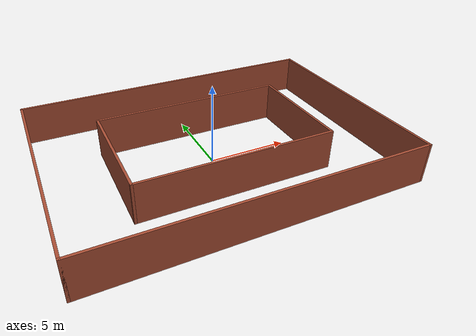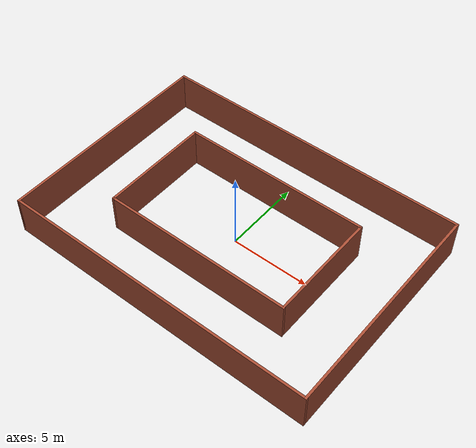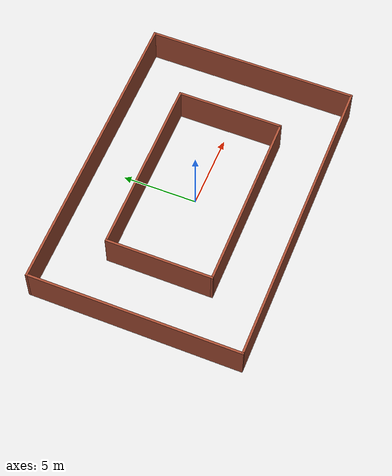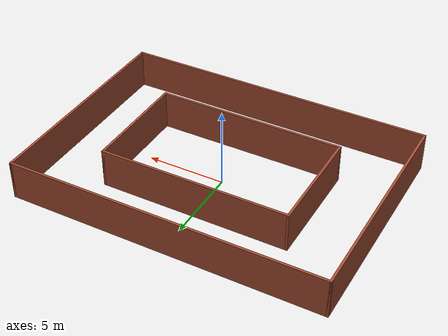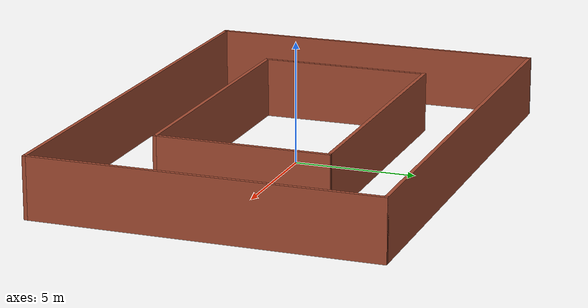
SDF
<?xml version='1.0'?>
<sdf version='1.6'>
  <model name='small_building'>
    <pose frame=''>0 0 0 0 -0 0</pose>
    <link name='Wall_0'>
      <collision name='Wall_0_Collision'>
        <geometry>
          <box>
            <size>14.15 0.15 2.5</size>
          </box>
        </geometry>
        <pose frame=''>0 0 1.25 0 -0 0</pose>
      </collision>
      <visual name='Wall_0_Visual'>
        <pose frame=''>0 0 1.25 0 -0 0</pose>
        <geometry>
          <box>
            <size>14.15 0.15 2.5</size>
          </box>
        </geometry>
        <material>
          <script>
            <uri>file://media/materials/scripts/gazebo.material</uri>
            <name>Gazebo/Bricks</name>
          </script>
          <ambient>1 1 1 1</ambient>
        </material>
        <meta>
          <layer>0</layer>
        </meta>
      </visual>
      <pose frame=''>-10 0 0 0 0 -1.5708</pose>
    </link>
    <link name='Wall_10'>
      <collision name='Wall_10_Collision'>
        <geometry>
          <box>
            <size>7.15 0.15 2.5</size>
          </box>
        </geometry>
        <pose frame=''>0 0 1.25 0 -0 0</pose>
      </collision>
      <visual name='Wall_10_Visual'>
        <pose frame=''>0 0 1.25 0 -0 0</pose>
        <geometry>
          <box>
            <size>7.15 0.15 2.5</size>
          </box>
        </geometry>
        <material>
          <script>
            <uri>file://media/materials/scripts/gazebo.material</uri>
            <name>Gazebo/Bricks</name>
          </script>
          <ambient>1 1 1 1</ambient>
        </material>
        <meta>
          <layer>0</layer>
        </meta>
      </visual>
      <pose frame=''>6 0 0 0 0 -1.5708</pose>
    </link>
    <link name='Wall_11'>
      <collision name='Wall_11_Collision'>
        <geometry>
          <box>
            <size>12.15 0.15 2.5</size>
          </box>
        </geometry>
        <pose frame=''>0 0 1.25 0 -0 0</pose>
      </collision>
      <visual name='Wall_11_Visual'>
        <pose frame=''>0 0 1.25 0 -0 0</pose>
        <geometry>
          <box>
            <size>12.15 0.15 2.5</size>
          </box>
        </geometry>
        <material>
          <script>
            <uri>file://media/materials/scripts/gazebo.material</uri>
            <name>Gazebo/Bricks</name>
          </script>
          <ambient>1 1 1 1</ambient>
        </material>
        <meta>
          <layer>0</layer>
        </meta>
      </visual>
      <pose frame=''>0 -3.5 0 0 -0 3.14159</pose>
    </link>
    <link name='Wall_12'>
      <collision name='Wall_12_Collision'>
        <geometry>
          <box>
            <size>7.15 0.15 2.5</size>
          </box>
        </geometry>
        <pose frame=''>0 0 1.25 0 -0 0</pose>
      </collision>
      <visual name='Wall_12_Visual'>
        <pose frame=''>0 0 1.25 0 -0 0</pose>
        <geometry>
          <box>
            <size>7.15 0.15 2.5</size>
          </box>
        </geometry>
        <material>
          <script>
            <uri>file://media/materials/scripts/gazebo.material</uri>
            <name>Gazebo/Bricks</name>
          </script>
          <ambient>1 1 1 1</ambient>
        </material>
        <meta>
          <layer>0</layer>
        </meta>
      </visual>
      <pose frame=''>-6 0 0 0 -0 1.5708</pose>
    </link>
    <link name='Wall_2'>
      <collision name='Wall_2_Collision'>
        <geometry>
          <box>
            <size>20.15 0.15 2.5</size>
          </box>
        </geometry>
        <pose frame=''>0 0 1.25 0 -0 0</pose>
      </collision>
      <visual name='Wall_2_Visual'>
        <pose frame=''>0 0 1.25 0 -0 0</pose>
        <geometry>
          <box>
            <size>20.15 0.15 2.5</size>
          </box>
        </geometry>
        <material>
          <script>
            <uri>file://media/materials/scripts/gazebo.material</uri>
            <name>Gazebo/Bricks</name>
          </script>
          <ambient>1 1 1 1</ambient>
        </material>
        <meta>
          <layer>0</layer>
        </meta>
      </visual>
      <pose frame=''>0 -7 0 0 -0 0</pose>
    </link>
    <link name='Wall_5'>
      <collision name='Wall_5_Collision'>
        <geometry>
          <box>
            <size>20.15 0.15 2.5</size>
          </box>
        </geometry>
        <pose frame=''>0 0 1.25 0 -0 0</pose>
      </collision>
      <visual name='Wall_5_Visual'>
        <pose frame=''>0 0 1.25 0 -0 0</pose>
        <geometry>
          <box>
            <size>20.15 0.15 2.5</size>
          </box>
        </geometry>
        <material>
          <script>
            <uri>file://media/materials/scripts/gazebo.material</uri>
            <name>Gazebo/Bricks</name>
          </script>
          <ambient>1 1 1 1</ambient>
        </material>
        <meta>
          <layer>0</layer>
        </meta>
      </visual>
      <pose frame=''>0 7 0 0 -0 0</pose>
    </link>
    <link name='Wall_7'>
      <collision name='Wall_7_Collision'>
        <geometry>
          <box>
            <size>14.15 0.15 2.5</size>
          </box>
        </geometry>
        <pose frame=''>0 0 1.25 0 -0 0</pose>
      </collision>
      <visual name='Wall_7_Visual'>
        <pose frame=''>0 0 1.25 0 -0 0</pose>
        <geometry>
          <box>
            <size>14.15 0.15 2.5</size>
          </box>
        </geometry>
        <material>
          <script>
            <uri>file://media/materials/scripts/gazebo.material</uri>
            <name>Gazebo/Bricks</name>
          </script>
          <ambient>1 1 1 1</ambient>
        </material>
        <meta>
          <layer>0</layer>
        </meta>
      </visual>
      <pose frame=''>10 0 0 0 0 -1.5708</pose>
    </link>
    <link name='Wall_9'>
      <collision name='Wall_9_Collision'>
        <geometry>
          <box>
            <size>12.15 0.15 2.5</size>
          </box>
        </geometry>
        <pose frame=''>0 0 1.25 0 -0 0</pose>
      </collision>
      <visual name='Wall_9_Visual'>
        <pose frame=''>0 0 1.25 0 -0 0</pose>
        <geometry>
          <box>
            <size>12.15 0.15 2.5</size>
          </box>
        </geometry>
        <material>
          <script>
            <uri>file://media/materials/scripts/gazebo.material</uri>
            <name>Gazebo/Bricks</name>
          </script>
          <ambient>1 1 1 1</ambient>
        </material>
        <meta>
          <layer>0</layer>
        </meta>
      </visual>
      <pose frame=''>0 3.5 0 0 -0 0</pose>
    </link>
    <static>1</static>
  </model>
</sdf>
